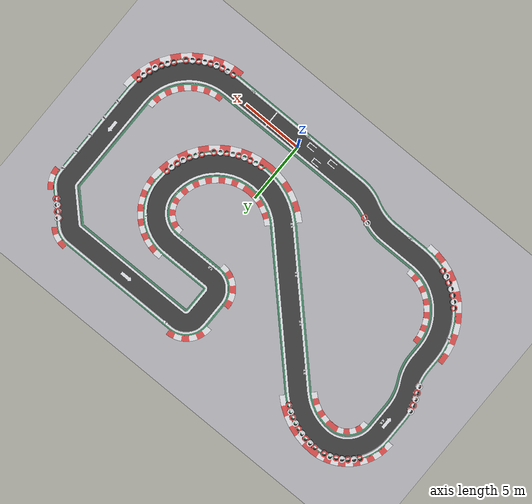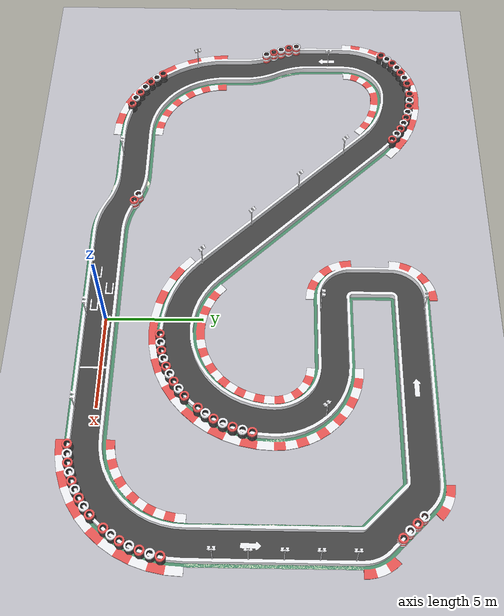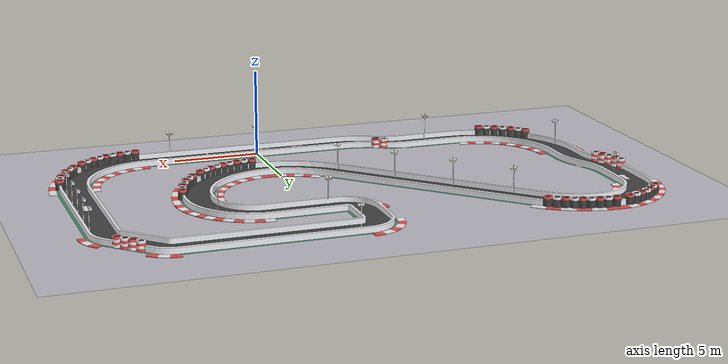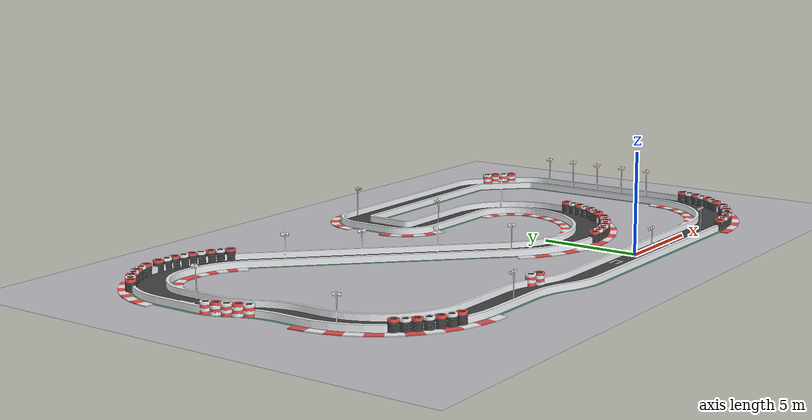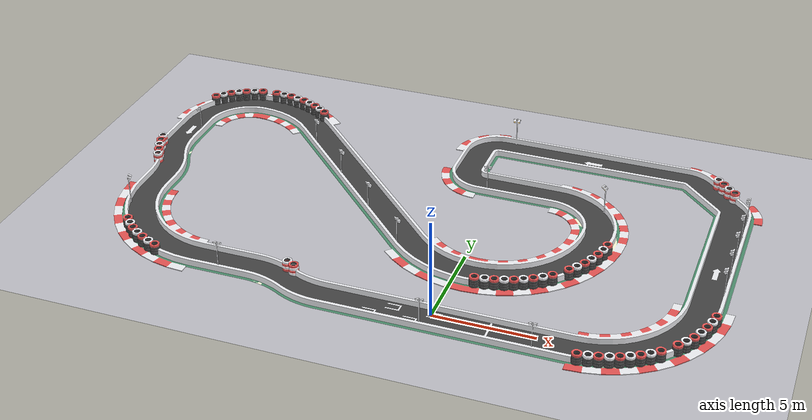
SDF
<?xml version="1.0"?>
<sdf version="1.9">
  <world name="racetrack_decorated">

    <physics name="1ms" type="ignored">
      <max_step_size>0.001</max_step_size>
      <real_time_factor>0.0</real_time_factor>
    </physics>

    <plugin filename="gz-sim-physics-system"
            name="gz::sim::systems::Physics"/>
    <plugin filename="gz-sim-user-commands-system"
            name="gz::sim::systems::UserCommands"/>
    <plugin filename="gz-sim-scene-broadcaster-system"
            name="gz::sim::systems::SceneBroadcaster"/>
    <plugin filename="gz-sim-sensors-system"
            name="gz::sim::systems::Sensors">
      <render_engine>ogre2</render_engine>
    </plugin>

    <!-- Sun without shadows for VM performance -->
    <light type="directional" name="sun">
      <cast_shadows>false</cast_shadows>
      <pose>0 0 10 0 0 0</pose>
      <diffuse>0.95 0.95 0.95 1</diffuse>
      <specular>0.25 0.25 0.25 1</specular>
      <attenuation>
        <range>1000</range>
        <constant>0.9</constant>
        <linear>0.01</linear>
        <quadratic>0.001</quadratic>
      </attenuation>
      <direction>-0.5 0.1 -0.9</direction>
    </light>

    <!-- Ground plane -->
    <model name="ground_plane">
      <static>true</static>
      <link name="link">
        <collision name="collision">
          <geometry>
            <plane>
              <normal>0 0 1</normal>
              <size>100 100</size>
            </plane>
          </geometry>
        </collision>
        <visual name="visual">
          <cast_shadows>false</cast_shadows>
          <geometry>
            <plane>
              <normal>0 0 1</normal>
              <size>100 100</size>
            </plane>
          </geometry>
          <material>
            <ambient>0.75 0.75 0.78 1</ambient>
            <diffuse>0.75 0.75 0.78 1</diffuse>
          </material>
        </visual>
      </link>
    </model>

    <!-- ============== MODELO DE LA CARRETERA DECORADA (RACETRACK DECORATED MESH) ============== -->
    <!-- Adaptado del proyecto de referencia, compatible con Gazebo Sim -->
    <model name="track">
      <pose>0 0 0.01 0 0 0</pose>
      <static>true</static>

      <!-- Pista Visual y de Colisión de Suelo -->
      <link name="track">
        <visual name="visual">
          <cast_shadows>false</cast_shadows>
          <geometry>
            <mesh>
              <uri>../meshes/track_decorated.dae</uri>
            </mesh>
          </geometry>
        </visual>
        <collision name="collision">
          <geometry>
            <plane>
              <normal>0 0 1</normal>
              <size>100 100</size>
            </plane>
          </geometry>
          <surface>
            <friction>
              <ode>
                <mu>100</mu>
                <mu2>50</mu2>
              </ode>
            </friction>
          </surface>
        </collision>
      </link>

      <!-- Paredes Invisibles de Colisión (Evita caerse de la pista) -->
      <link name="walls">
        <collision name="walls-collision">
          <geometry>
            <mesh>
              <uri>../meshes/walls.dae</uri>
            </mesh>
          </geometry>
          <surface>
            <friction>
              <ode>
                <mu>100</mu>
                <mu2>50</mu2>
              </ode>
            </friction>
          </surface>
        </collision>
      </link>

      <!-- Colisionadores de Decoración (Barreras, Conos) -->
      <link name="decoration-collision-link">
        <collision name="decoration-collision">
          <geometry>
            <mesh>
              <uri>../meshes/decoration_colliders.dae</uri>
            </mesh>
          </geometry>
          <surface>
            <friction>
              <ode>
                <mu>100</mu>
                <mu2>50</mu2>
              </ode>
            </friction>
          </surface>
        </collision>
      </link>
    </model>

  </world>
</sdf>
